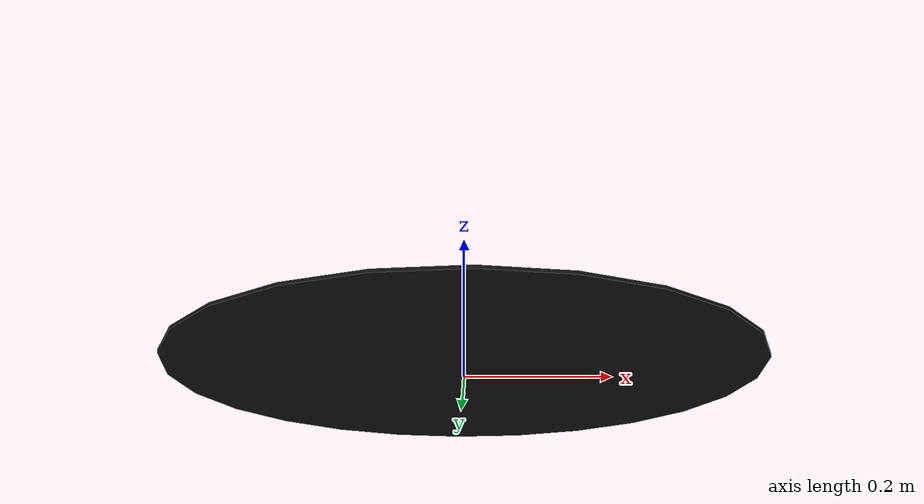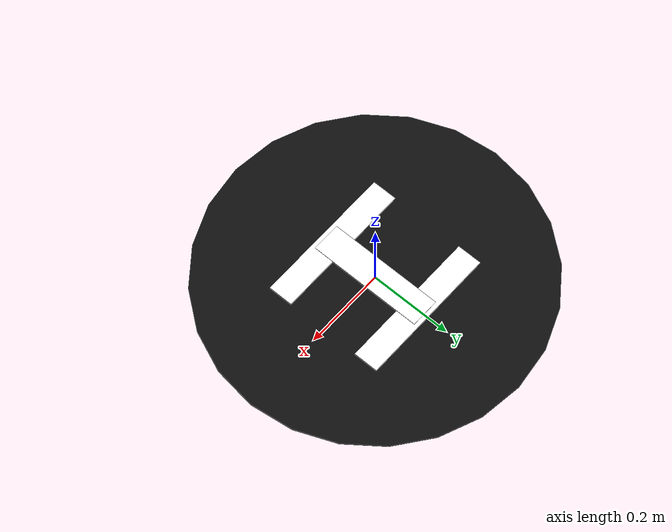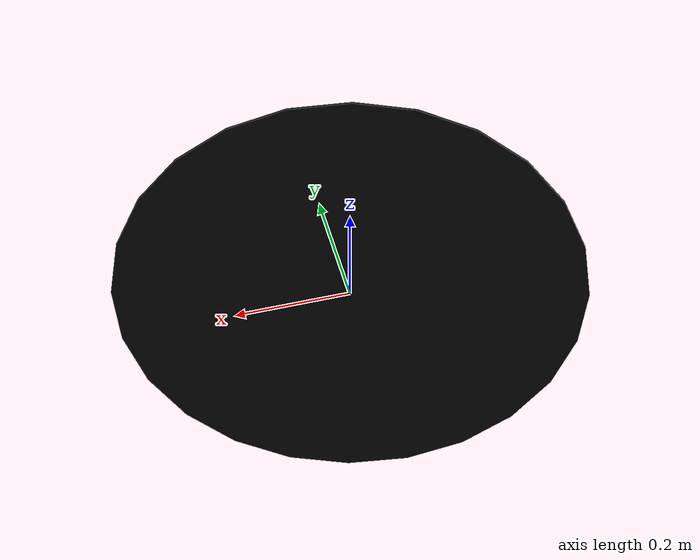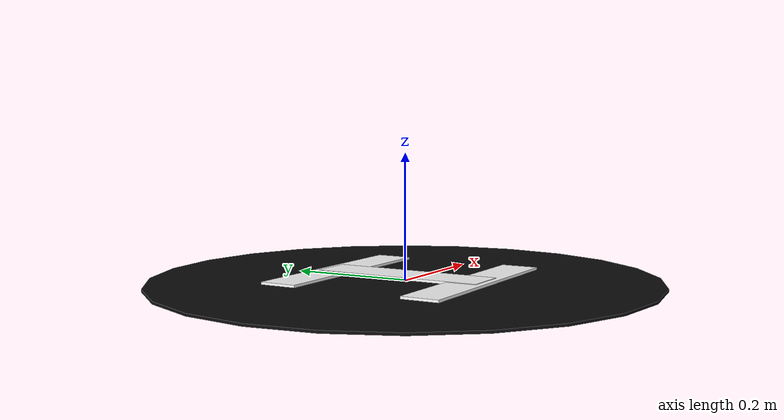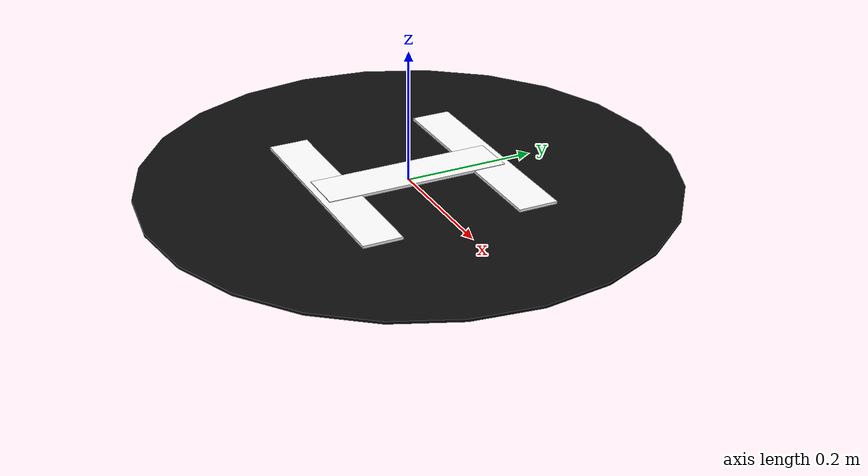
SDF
<?xml version="1.0"?>
<sdf version="1.9">
  <model name="takeoff_pad">
    <static>true</static>
    <link name="link">
      <visual name="pad">
        <pose>0 0 0.002 0 0 0</pose>
        <geometry><cylinder><radius>0.4</radius><length>0.004</length></cylinder></geometry>
        <material><ambient>0.05 0.05 0.05 1</ambient><diffuse>0.05 0.05 0.05 1</diffuse></material>
      </visual>
      <visual name="h_left">
        <pose>0 -0.12 0.008 0 0 0</pose>
        <geometry><box><size>0.34 0.06 0.004</size></box></geometry>
        <material><ambient>1 1 1 1</ambient><diffuse>1 1 1 1</diffuse></material>
      </visual>
      <visual name="h_right">
        <pose>0 0.12 0.008 0 0 0</pose>
        <geometry><box><size>0.34 0.06 0.004</size></box></geometry>
        <material><ambient>1 1 1 1</ambient><diffuse>1 1 1 1</diffuse></material>
      </visual>
      <visual name="h_mid">
        <pose>0 0 0.009 0 0 0</pose>
        <geometry><box><size>0.07 0.28 0.004</size></box></geometry>
        <material><ambient>1 1 1 1</ambient><diffuse>1 1 1 1</diffuse></material>
      </visual>
    </link>
  </model>
</sdf>
